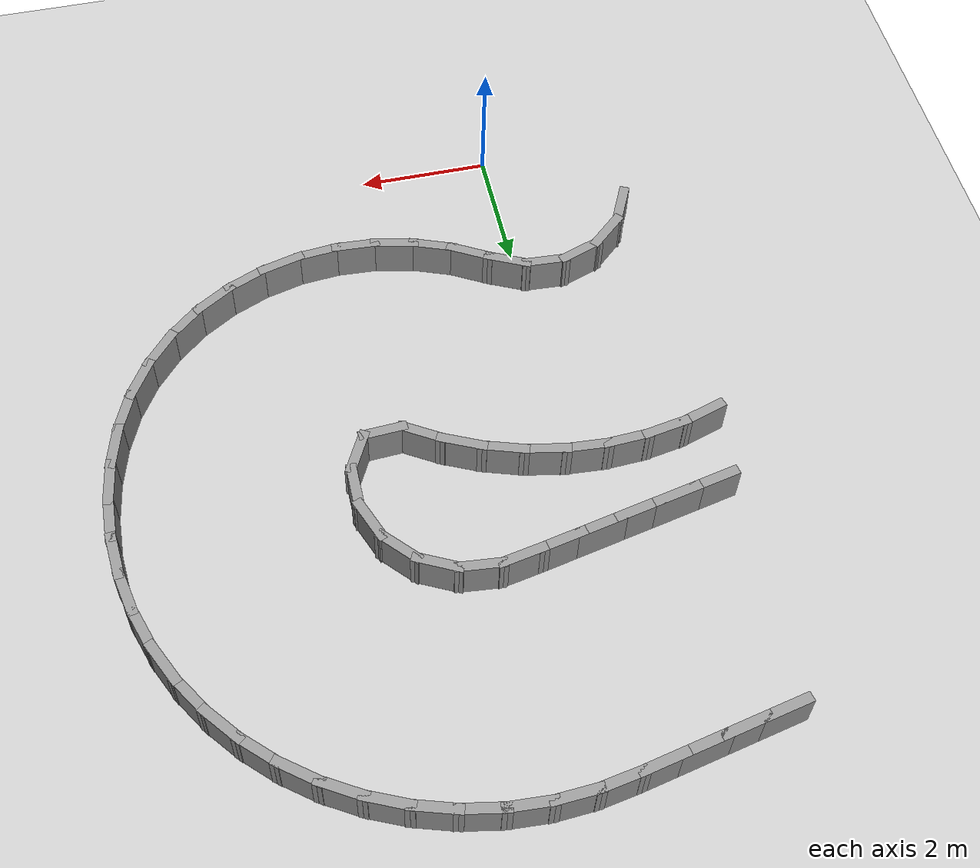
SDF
<sdf version="1.7">
 <world name="default">
  <model name="ground_plane">
   <static>1</static>
   <link name="link">
    <collision name="collision">
     <geometry><plane><normal>0 0 1</normal><size>100 100</size></plane></geometry>
     <surface><friction><ode><mu>100</mu><mu2>50</mu2></ode></friction></surface>
    </collision>
    <visual name="visual">
     <cast_shadows>0</cast_shadows>
     <geometry><plane><normal>0 0 1</normal><size>100 100</size></plane></geometry>
     <material>
      <script><uri>file://media/materials/scripts/gazebo.material</uri><name>Gazebo/Grey</name></script>
     </material>
    </visual>
   </link>
  </model>
  <model name="rand_turn_07">
   <link name="Wall_11">
    <collision name="Wall_11_Collision">
     <geometry><box><size>0.7496 0.1500 0.6000</size></box></geometry>
     <pose>0 0 0.3000 0 -0 0</pose>
    </collision>
    <visual name="Wall_11_Visual">
     <pose>0 0 0.3000 0 -0 0</pose>
     <geometry><box><size>0.7496 0.1500 0.6000</size></box></geometry>
     <material>
      <script><uri>file://media/materials/scripts/gazebo.material</uri><name>Gazebo/Grey</name></script>
      <ambient>1 1 1 1</ambient>
     </material>
    </visual>
    <pose>-1.9034 5.8433 0 0 -0 0.29802</pose>
   </link>
   <link name="Wall_12">
    <collision name="Wall_12_Collision">
     <geometry><box><size>0.7496 0.1500 0.6000</size></box></geometry>
     <pose>0 0 0.3000 0 -0 0</pose>
    </collision>
    <visual name="Wall_12_Visual">
     <pose>0 0 0.3000 0 -0 0</pose>
     <geometry><box><size>0.7496 0.1500 0.6000</size></box></geometry>
     <material>
      <script><uri>file://media/materials/scripts/gazebo.material</uri><name>Gazebo/Grey</name></script>
      <ambient>1 1 1 1</ambient>
     </material>
    </visual>
    <pose>-1.3217 5.9840 0 0 -0 0.17653</pose>
   </link>
   <link name="Wall_13">
    <collision name="Wall_13_Collision">
     <geometry><box><size>0.7496 0.1500 0.6000</size></box></geometry>
     <pose>0 0 0.3000 0 -0 0</pose>
    </collision>
    <visual name="Wall_13_Visual">
     <pose>0 0 0.3000 0 -0 0</pose>
     <geometry><box><size>0.7496 0.1500 0.6000</size></box></geometry>
     <material>
      <script><uri>file://media/materials/scripts/gazebo.material</uri><name>Gazebo/Grey</name></script>
      <ambient>1 1 1 1</ambient>
     </material>
    </visual>
    <pose>-0.7272 6.0531 0 0 -0 0.05503</pose>
   </link>
   <link name="Wall_14">
    <collision name="Wall_14_Collision">
     <geometry><box><size>0.7496 0.1500 0.6000</size></box></geometry>
     <pose>0 0 0.3000 0 -0 0</pose>
    </collision>
    <visual name="Wall_14_Visual">
     <pose>0 0 0.3000 0 -0 0</pose>
     <geometry><box><size>0.7496 0.1500 0.6000</size></box></geometry>
     <material>
      <script><uri>file://media/materials/scripts/gazebo.material</uri><name>Gazebo/Grey</name></script>
      <ambient>1 1 1 1</ambient>
     </material>
    </visual>
    <pose>-0.1287 6.0497 0 0 -0 -0.06646</pose>
   </link>
   <link name="Wall_15">
    <collision name="Wall_15_Collision">
     <geometry><box><size>0.7496 0.1500 0.6000</size></box></geometry>
     <pose>0 0 0.3000 0 -0 0</pose>
    </collision>
    <visual name="Wall_15_Visual">
     <pose>0 0 0.3000 0 -0 0</pose>
     <geometry><box><size>0.7496 0.1500 0.6000</size></box></geometry>
     <material>
      <script><uri>file://media/materials/scripts/gazebo.material</uri><name>Gazebo/Grey</name></script>
      <ambient>1 1 1 1</ambient>
     </material>
    </visual>
    <pose>0.4650 5.9738 0 0 -0 -0.18795</pose>
   </link>
   <link name="Wall_16">
    <collision name="Wall_16_Collision">
     <geometry><box><size>0.7496 0.1500 0.6000</size></box></geometry>
     <pose>0 0 0.3000 0 -0 0</pose>
    </collision>
    <visual name="Wall_16_Visual">
     <pose>0 0 0.3000 0 -0 0</pose>
     <geometry><box><size>0.7496 0.1500 0.6000</size></box></geometry>
     <material>
      <script><uri>file://media/materials/scripts/gazebo.material</uri><name>Gazebo/Grey</name></script>
      <ambient>1 1 1 1</ambient>
     </material>
    </visual>
    <pose>1.0451 5.8263 0 0 -0 -0.30997</pose>
   </link>
   <link name="Wall_17">
    <collision name="Wall_17_Collision">
     <geometry><box><size>0.7496 0.1500 0.6000</size></box></geometry>
     <pose>0 0 0.3000 0 -0 0</pose>
    </collision>
    <visual name="Wall_17_Visual">
     <pose>0 0 0.3000 0 -0 0</pose>
     <geometry><box><size>0.7496 0.1500 0.6000</size></box></geometry>
     <material>
      <script><uri>file://media/materials/scripts/gazebo.material</uri><name>Gazebo/Grey</name></script>
      <ambient>1 1 1 1</ambient>
     </material>
    </visual>
    <pose>1.6029 5.6095 0 0 -0 -0.43148</pose>
   </link>
   <link name="Wall_18">
    <collision name="Wall_18_Collision">
     <geometry><box><size>0.7497 0.1500 0.6000</size></box></geometry>
     <pose>0 0 0.3000 0 -0 0</pose>
    </collision>
    <visual name="Wall_18_Visual">
     <pose>0 0 0.3000 0 -0 0</pose>
     <geometry><box><size>0.7497 0.1500 0.6000</size></box></geometry>
     <material>
      <script><uri>file://media/materials/scripts/gazebo.material</uri><name>Gazebo/Grey</name></script>
      <ambient>1 1 1 1</ambient>
     </material>
    </visual>
    <pose>2.1314 5.3282 0 0 -0 -0.54661</pose>
   </link>
   <link name="Wall_19">
    <collision name="Wall_19_Collision">
     <geometry><box><size>0.7203 0.1500 0.6000</size></box></geometry>
     <pose>0 0 0.3000 0 -0 0</pose>
    </collision>
    <visual name="Wall_19_Visual">
     <pose>0 0 0.3000 0 -0 0</pose>
     <geometry><box><size>0.7203 0.1500 0.6000</size></box></geometry>
     <material>
      <script><uri>file://media/materials/scripts/gazebo.material</uri><name>Gazebo/Grey</name></script>
      <ambient>1 1 1 1</ambient>
     </material>
    </visual>
    <pose>2.6722 5.1901 0 0 -0 0.06224</pose>
   </link>
   <link name="Wall_20">
    <collision name="Wall_20_Collision">
     <geometry><box><size>0.7338 0.1500 0.6000</size></box></geometry>
     <pose>0 0 0.3000 0 -0 0</pose>
    </collision>
    <visual name="Wall_20_Visual">
     <pose>0 0 0.3000 0 -0 0</pose>
     <geometry><box><size>0.7338 0.1500 0.6000</size></box></geometry>
     <material>
      <script><uri>file://media/materials/scripts/gazebo.material</uri><name>Gazebo/Grey</name></script>
      <ambient>1 1 1 1</ambient>
     </material>
    </visual>
    <pose>3.0927 5.4662 0 0 -0 1.08660</pose>
   </link>
   <link name="Wall_21">
    <collision name="Wall_21_Collision">
     <geometry><box><size>0.7465 0.1500 0.6000</size></box></geometry>
     <pose>0 0 0.3000 0 -0 0</pose>
    </collision>
    <visual name="Wall_21_Visual">
     <pose>0 0 0.3000 0 -0 0</pose>
     <geometry><box><size>0.7465 0.1500 0.6000</size></box></geometry>
     <material>
      <script><uri>file://media/materials/scripts/gazebo.material</uri><name>Gazebo/Grey</name></script>
      <ambient>1 1 1 1</ambient>
     </material>
    </visual>
    <pose>3.2300 6.0228 0 0 -0 1.56584</pose>
   </link>
   <link name="Wall_22">
    <collision name="Wall_22_Collision">
     <geometry><box><size>0.7465 0.1500 0.6000</size></box></geometry>
     <pose>0 0 0.3000 0 -0 0</pose>
    </collision>
    <visual name="Wall_22_Visual">
     <pose>0 0 0.3000 0 -0 0</pose>
     <geometry><box><size>0.7465 0.1500 0.6000</size></box></geometry>
     <material>
      <script><uri>file://media/materials/scripts/gazebo.material</uri><name>Gazebo/Grey</name></script>
      <ambient>1 1 1 1</ambient>
     </material>
    </visual>
    <pose>3.1246 6.5995 0 0 -0 1.93747</pose>
   </link>
   <link name="Wall_23">
    <collision name="Wall_23_Collision">
     <geometry><box><size>0.7465 0.1500 0.6000</size></box></geometry>
     <pose>0 0 0.3000 0 -0 0</pose>
    </collision>
    <visual name="Wall_23_Visual">
     <pose>0 0 0.3000 0 -0 0</pose>
     <geometry><box><size>0.7465 0.1500 0.6000</size></box></geometry>
     <material>
      <script><uri>file://media/materials/scripts/gazebo.material</uri><name>Gazebo/Grey</name></script>
      <ambient>1 1 1 1</ambient>
     </material>
    </visual>
    <pose>2.8170 7.0987 0 0 -0 2.30850</pose>
   </link>
   <link name="Wall_24">
    <collision name="Wall_24_Collision">
     <geometry><box><size>0.7465 0.1500 0.6000</size></box></geometry>
     <pose>0 0 0.3000 0 -0 0</pose>
    </collision>
    <visual name="Wall_24_Visual">
     <pose>0 0 0.3000 0 -0 0</pose>
     <geometry><box><size>0.7465 0.1500 0.6000</size></box></geometry>
     <material>
      <script><uri>file://media/materials/scripts/gazebo.material</uri><name>Gazebo/Grey</name></script>
      <ambient>1 1 1 1</ambient>
     </material>
    </visual>
    <pose>2.3494 7.4523 0 0 -0 2.67965</pose>
   </link>
   <link name="Wall_25">
    <collision name="Wall_25_Collision">
     <geometry><box><size>0.7465 0.1500 0.6000</size></box></geometry>
     <pose>0 0 0.3000 0 -0 0</pose>
    </collision>
    <visual name="Wall_25_Visual">
     <pose>0 0 0.3000 0 -0 0</pose>
     <geometry><box><size>0.7465 0.1500 0.6000</size></box></geometry>
     <material>
      <script><uri>file://media/materials/scripts/gazebo.material</uri><name>Gazebo/Grey</name></script>
      <ambient>1 1 1 1</ambient>
     </material>
    </visual>
    <pose>1.7853 7.6121 0 0 -0 3.05135</pose>
   </link>
   <link name="Wall_26">
    <collision name="Wall_26_Collision">
     <geometry><box><size>0.7497 0.1500 0.6000</size></box></geometry>
     <pose>0 0 0.3000 0 -0 0</pose>
    </collision>
    <visual name="Wall_26_Visual">
     <pose>0 0 0.3000 0 -0 0</pose>
     <geometry><box><size>0.7497 0.1500 0.6000</size></box></geometry>
     <material>
      <script><uri>file://media/materials/scripts/gazebo.material</uri><name>Gazebo/Grey</name></script>
      <ambient>1 1 1 1</ambient>
     </material>
    </visual>
    <pose>1.1940 7.5816 0 0 -0 -2.94908</pose>
   </link>
   <link name="Wall_27">
    <collision name="Wall_27_Collision">
     <geometry><box><size>0.7500 0.1500 0.6000</size></box></geometry>
     <pose>0 0 0.3000 0 -0 0</pose>
    </collision>
    <visual name="Wall_27_Visual">
     <pose>0 0 0.3000 0 -0 0</pose>
     <geometry><box><size>0.7500 0.1500 0.6000</size></box></geometry>
     <material>
      <script><uri>file://media/materials/scripts/gazebo.material</uri><name>Gazebo/Grey</name></script>
      <ambient>1 1 1 1</ambient>
     </material>
    </visual>
    <pose>0.6063 7.4615 0 0 -0 -2.93095</pose>
   </link>
   <link name="Wall_28">
    <collision name="Wall_28_Collision">
     <geometry><box><size>0.7500 0.1500 0.6000</size></box></geometry>
     <pose>0 0 0.3000 0 -0 0</pose>
    </collision>
    <visual name="Wall_28_Visual">
     <pose>0 0 0.3000 0 -0 0</pose>
     <geometry><box><size>0.7500 0.1500 0.6000</size></box></geometry>
     <material>
      <script><uri>file://media/materials/scripts/gazebo.material</uri><name>Gazebo/Grey</name></script>
      <ambient>1 1 1 1</ambient>
     </material>
    </visual>
    <pose>0.0196 7.3361 0 0 -0 -2.93095</pose>
   </link>
   <link name="Wall_29">
    <collision name="Wall_29_Collision">
     <geometry><box><size>0.7500 0.1500 0.6000</size></box></geometry>
     <pose>0 0 0.3000 0 -0 0</pose>
    </collision>
    <visual name="Wall_29_Visual">
     <pose>0 0 0.3000 0 -0 0</pose>
     <geometry><box><size>0.7500 0.1500 0.6000</size></box></geometry>
     <material>
      <script><uri>file://media/materials/scripts/gazebo.material</uri><name>Gazebo/Grey</name></script>
      <ambient>1 1 1 1</ambient>
     </material>
    </visual>
    <pose>-0.5672 7.2106 0 0 -0 -2.93095</pose>
   </link>
   <link name="Wall_30">
    <collision name="Wall_30_Collision">
     <geometry><box><size>0.7500 0.1500 0.6000</size></box></geometry>
     <pose>0 0 0.3000 0 -0 0</pose>
    </collision>
    <visual name="Wall_30_Visual">
     <pose>0 0 0.3000 0 -0 0</pose>
     <geometry><box><size>0.7500 0.1500 0.6000</size></box></geometry>
     <material>
      <script><uri>file://media/materials/scripts/gazebo.material</uri><name>Gazebo/Grey</name></script>
      <ambient>1 1 1 1</ambient>
     </material>
    </visual>
    <pose>-1.1539 7.0852 0 0 -0 -2.93095</pose>
   </link>
   <link name="Wall_31">
    <collision name="Wall_31_Collision">
     <geometry><box><size>0.7500 0.1500 0.6000</size></box></geometry>
     <pose>0 0 0.3000 0 -0 0</pose>
    </collision>
    <visual name="Wall_31_Visual">
     <pose>0 0 0.3000 0 -0 0</pose>
     <geometry><box><size>0.7500 0.1500 0.6000</size></box></geometry>
     <material>
      <script><uri>file://media/materials/scripts/gazebo.material</uri><name>Gazebo/Grey</name></script>
      <ambient>1 1 1 1</ambient>
     </material>
    </visual>
    <pose>-1.7406 6.9597 0 0 -0 -2.93095</pose>
   </link>
   <link name="Wall_59">
    <collision name="Wall_59_Collision">
     <geometry><box><size>0.7462 0.1500 0.6000</size></box></geometry>
     <pose>0 0 0.3000 0 -0 0</pose>
    </collision>
    <visual name="Wall_59_Visual">
     <pose>0 0 0.3000 0 -0 0</pose>
     <geometry><box><size>0.7462 0.1500 0.6000</size></box></geometry>
     <material>
      <script><uri>file://media/materials/scripts/gazebo.material</uri><name>Gazebo/Grey</name></script>
      <ambient>1 1 1 1</ambient>
     </material>
    </visual>
    <pose>-1.8103 1.7835 0 0 -0 1.12285</pose>
   </link>
   <link name="Wall_60">
    <collision name="Wall_60_Collision">
     <geometry><box><size>0.7462 0.1500 0.6000</size></box></geometry>
     <pose>0 0 0.3000 0 -0 0</pose>
    </collision>
    <visual name="Wall_60_Visual">
     <pose>0 0 0.3000 0 -0 0</pose>
     <geometry><box><size>0.7462 0.1500 0.6000</size></box></geometry>
     <material>
      <script><uri>file://media/materials/scripts/gazebo.material</uri><name>Gazebo/Grey</name></script>
      <ambient>1 1 1 1</ambient>
     </material>
    </visual>
    <pose>-1.4592 2.2510 0 0 -0 0.73045</pose>
   </link>
   <link name="Wall_61">
    <collision name="Wall_61_Collision">
     <geometry><box><size>0.7461 0.1500 0.6000</size></box></geometry>
     <pose>0 0 0.3000 0 -0 0</pose>
    </collision>
    <visual name="Wall_61_Visual">
     <pose>0 0 0.3000 0 -0 0</pose>
     <geometry><box><size>0.7461 0.1500 0.6000</size></box></geometry>
     <material>
      <script><uri>file://media/materials/scripts/gazebo.material</uri><name>Gazebo/Grey</name></script>
      <ambient>1 1 1 1</ambient>
     </material>
    </visual>
    <pose>-0.9560 2.5490 0 0 -0 0.33879</pose>
   </link>
   <link name="Wall_62">
    <collision name="Wall_62_Collision">
     <geometry><box><size>0.7462 0.1500 0.6000</size></box></geometry>
     <pose>0 0 0.3000 0 -0 0</pose>
    </collision>
    <visual name="Wall_62_Visual">
     <pose>0 0 0.3000 0 -0 0</pose>
     <geometry><box><size>0.7462 0.1500 0.6000</size></box></geometry>
     <material>
      <script><uri>file://media/materials/scripts/gazebo.material</uri><name>Gazebo/Grey</name></script>
      <ambient>1 1 1 1</ambient>
     </material>
    </visual>
    <pose>-0.3773 2.6323 0 0 -0 -0.05288</pose>
   </link>
   <link name="Wall_63">
    <collision name="Wall_63_Collision">
     <geometry><box><size>0.7465 0.1500 0.6000</size></box></geometry>
     <pose>0 0 0.3000 0 -0 0</pose>
    </collision>
    <visual name="Wall_63_Visual">
     <pose>0 0 0.3000 0 -0 0</pose>
     <geometry><box><size>0.7465 0.1500 0.6000</size></box></geometry>
     <material>
      <script><uri>file://media/materials/scripts/gazebo.material</uri><name>Gazebo/Grey</name></script>
      <ambient>1 1 1 1</ambient>
     </material>
    </visual>
    <pose>0.1900 2.4889 0 0 -0 -0.44208</pose>
   </link>
   <link name="Wall_64">
    <collision name="Wall_64_Collision">
     <geometry><box><size>0.7494 0.1500 0.6000</size></box></geometry>
     <pose>0 0 0.3000 0 -0 0</pose>
    </collision>
    <visual name="Wall_64_Visual">
     <pose>0 0 0.3000 0 -0 0</pose>
     <geometry><box><size>0.7494 0.1500 0.6000</size></box></geometry>
     <material>
      <script><uri>file://media/materials/scripts/gazebo.material</uri><name>Gazebo/Grey</name></script>
      <ambient>1 1 1 1</ambient>
     </material>
    </visual>
    <pose>0.7211 2.2151 0 0 -0 -0.50970</pose>
   </link>
   <link name="Wall_65">
    <collision name="Wall_65_Collision">
     <geometry><box><size>0.7494 0.1500 0.6000</size></box></geometry>
     <pose>0 0 0.3000 0 -0 0</pose>
    </collision>
    <visual name="Wall_65_Visual">
     <pose>0 0 0.3000 0 -0 0</pose>
     <geometry><box><size>0.7494 0.1500 0.6000</size></box></geometry>
     <material>
      <script><uri>file://media/materials/scripts/gazebo.material</uri><name>Gazebo/Grey</name></script>
      <ambient>1 1 1 1</ambient>
     </material>
    </visual>
    <pose>1.2635 1.9642 0 0 -0 -0.35690</pose>
   </link>
   <link name="Wall_66">
    <collision name="Wall_66_Collision">
     <geometry><box><size>0.7494 0.1500 0.6000</size></box></geometry>
     <pose>0 0 0.3000 0 -0 0</pose>
    </collision>
    <visual name="Wall_66_Visual">
     <pose>0 0 0.3000 0 -0 0</pose>
     <geometry><box><size>0.7494 0.1500 0.6000</size></box></geometry>
     <material>
      <script><uri>file://media/materials/scripts/gazebo.material</uri><name>Gazebo/Grey</name></script>
      <ambient>1 1 1 1</ambient>
     </material>
    </visual>
    <pose>1.8376 1.7978 0 0 -0 -0.20735</pose>
   </link>
   <link name="Wall_67">
    <collision name="Wall_67_Collision">
     <geometry><box><size>0.7494 0.1500 0.6000</size></box></geometry>
     <pose>0 0 0.3000 0 -0 0</pose>
    </collision>
    <visual name="Wall_67_Visual">
     <pose>0 0 0.3000 0 -0 0</pose>
     <geometry><box><size>0.7494 0.1500 0.6000</size></box></geometry>
     <material>
      <script><uri>file://media/materials/scripts/gazebo.material</uri><name>Gazebo/Grey</name></script>
      <ambient>1 1 1 1</ambient>
     </material>
    </visual>
    <pose>2.4302 1.7203 0 0 -0 -0.05266</pose>
   </link>
   <link name="Wall_68">
    <collision name="Wall_68_Collision">
     <geometry><box><size>0.7494 0.1500 0.6000</size></box></geometry>
     <pose>0 0 0.3000 0 -0 0</pose>
    </collision>
    <visual name="Wall_68_Visual">
     <pose>0 0 0.3000 0 -0 0</pose>
     <geometry><box><size>0.7494 0.1500 0.6000</size></box></geometry>
     <material>
      <script><uri>file://media/materials/scripts/gazebo.material</uri><name>Gazebo/Grey</name></script>
      <ambient>1 1 1 1</ambient>
     </material>
    </visual>
    <pose>3.0277 1.7336 0 0 -0 0.09715</pose>
   </link>
   <link name="Wall_69">
    <collision name="Wall_69_Collision">
     <geometry><box><size>0.7494 0.1500 0.6000</size></box></geometry>
     <pose>0 0 0.3000 0 -0 0</pose>
    </collision>
    <visual name="Wall_69_Visual">
     <pose>0 0 0.3000 0 -0 0</pose>
     <geometry><box><size>0.7494 0.1500 0.6000</size></box></geometry>
     <material>
      <script><uri>file://media/materials/scripts/gazebo.material</uri><name>Gazebo/Grey</name></script>
      <ambient>1 1 1 1</ambient>
     </material>
    </visual>
    <pose>3.6164 1.8367 0 0 -0 0.24964</pose>
   </link>
   <link name="Wall_70">
    <collision name="Wall_70_Collision">
     <geometry><box><size>0.7494 0.1500 0.6000</size></box></geometry>
     <pose>0 0 0.3000 0 -0 0</pose>
    </collision>
    <visual name="Wall_70_Visual">
     <pose>0 0 0.3000 0 -0 0</pose>
     <geometry><box><size>0.7494 0.1500 0.6000</size></box></geometry>
     <material>
      <script><uri>file://media/materials/scripts/gazebo.material</uri><name>Gazebo/Grey</name></script>
      <ambient>1 1 1 1</ambient>
     </material>
    </visual>
    <pose>4.1826 2.0279 0 0 -0 0.40165</pose>
   </link>
   <link name="Wall_71">
    <collision name="Wall_71_Collision">
     <geometry><box><size>0.7494 0.1500 0.6000</size></box></geometry>
     <pose>0 0 0.3000 0 -0 0</pose>
    </collision>
    <visual name="Wall_71_Visual">
     <pose>0 0 0.3000 0 -0 0</pose>
     <geometry><box><size>0.7494 0.1500 0.6000</size></box></geometry>
     <material>
      <script><uri>file://media/materials/scripts/gazebo.material</uri><name>Gazebo/Grey</name></script>
      <ambient>1 1 1 1</ambient>
     </material>
    </visual>
    <pose>4.7136 2.3022 0 0 -0 0.55194</pose>
   </link>
   <link name="Wall_72">
    <collision name="Wall_72_Collision">
     <geometry><box><size>0.7494 0.1500 0.6000</size></box></geometry>
     <pose>0 0 0.3000 0 -0 0</pose>
    </collision>
    <visual name="Wall_72_Visual">
     <pose>0 0 0.3000 0 -0 0</pose>
     <geometry><box><size>0.7494 0.1500 0.6000</size></box></geometry>
     <material>
      <script><uri>file://media/materials/scripts/gazebo.material</uri><name>Gazebo/Grey</name></script>
      <ambient>1 1 1 1</ambient>
     </material>
    </visual>
    <pose>5.1968 2.6538 0 0 -0 0.70615</pose>
   </link>
   <link name="Wall_73">
    <collision name="Wall_73_Collision">
     <geometry><box><size>0.7494 0.1500 0.6000</size></box></geometry>
     <pose>0 0 0.3000 0 -0 0</pose>
    </collision>
    <visual name="Wall_73_Visual">
     <pose>0 0 0.3000 0 -0 0</pose>
     <geometry><box><size>0.7494 0.1500 0.6000</size></box></geometry>
     <material>
      <script><uri>file://media/materials/scripts/gazebo.material</uri><name>Gazebo/Grey</name></script>
      <ambient>1 1 1 1</ambient>
     </material>
    </visual>
    <pose>5.6214 3.0746 0 0 -0 0.85570</pose>
   </link>
   <link name="Wall_74">
    <collision name="Wall_74_Collision">
     <geometry><box><size>0.7494 0.1500 0.6000</size></box></geometry>
     <pose>0 0 0.3000 0 -0 0</pose>
    </collision>
    <visual name="Wall_74_Visual">
     <pose>0 0 0.3000 0 -0 0</pose>
     <geometry><box><size>0.7494 0.1500 0.6000</size></box></geometry>
     <material>
      <script><uri>file://media/materials/scripts/gazebo.material</uri><name>Gazebo/Grey</name></script>
      <ambient>1 1 1 1</ambient>
     </material>
    </visual>
    <pose>5.9775 3.5545 0 0 -0 1.00918</pose>
   </link>
   <link name="Wall_75">
    <collision name="Wall_75_Collision">
     <geometry><box><size>0.7494 0.1500 0.6000</size></box></geometry>
     <pose>0 0 0.3000 0 -0 0</pose>
    </collision>
    <visual name="Wall_75_Visual">
     <pose>0 0 0.3000 0 -0 0</pose>
     <geometry><box><size>0.7494 0.1500 0.6000</size></box></geometry>
     <material>
      <script><uri>file://media/materials/scripts/gazebo.material</uri><name>Gazebo/Grey</name></script>
      <ambient>1 1 1 1</ambient>
     </material>
    </visual>
    <pose>6.2570 4.0828 0 0 -0 1.15919</pose>
   </link>
   <link name="Wall_76">
    <collision name="Wall_76_Collision">
     <geometry><box><size>0.7496 0.1500 0.6000</size></box></geometry>
     <pose>0 0 0.3000 0 -0 0</pose>
    </collision>
    <visual name="Wall_76_Visual">
     <pose>0 0 0.3000 0 -0 0</pose>
     <geometry><box><size>0.7496 0.1500 0.6000</size></box></geometry>
     <material>
      <script><uri>file://media/materials/scripts/gazebo.material</uri><name>Gazebo/Grey</name></script>
      <ambient>1 1 1 1</ambient>
     </material>
    </visual>
    <pose>6.4597 4.6456 0 0 -0 1.29094</pose>
   </link>
   <link name="Wall_77">
    <collision name="Wall_77_Collision">
     <geometry><box><size>0.7496 0.1500 0.6000</size></box></geometry>
     <pose>0 0 0.3000 0 -0 0</pose>
    </collision>
    <visual name="Wall_77_Visual">
     <pose>0 0 0.3000 0 -0 0</pose>
     <geometry><box><size>0.7496 0.1500 0.6000</size></box></geometry>
     <material>
      <script><uri>file://media/materials/scripts/gazebo.material</uri><name>Gazebo/Grey</name></script>
      <ambient>1 1 1 1</ambient>
     </material>
    </visual>
    <pose>6.5904 5.2297 0 0 -0 1.41045</pose>
   </link>
   <link name="Wall_78">
    <collision name="Wall_78_Collision">
     <geometry><box><size>0.7496 0.1500 0.6000</size></box></geometry>
     <pose>0 0 0.3000 0 -0 0</pose>
    </collision>
    <visual name="Wall_78_Visual">
     <pose>0 0 0.3000 0 -0 0</pose>
     <geometry><box><size>0.7496 0.1500 0.6000</size></box></geometry>
     <material>
      <script><uri>file://media/materials/scripts/gazebo.material</uri><name>Gazebo/Grey</name></script>
      <ambient>1 1 1 1</ambient>
     </material>
    </visual>
    <pose>6.6505 5.8252 0 0 -0 1.52991</pose>
   </link>
   <link name="Wall_79">
    <collision name="Wall_79_Collision">
     <geometry><box><size>0.7496 0.1500 0.6000</size></box></geometry>
     <pose>0 0 0.3000 0 -0 0</pose>
    </collision>
    <visual name="Wall_79_Visual">
     <pose>0 0 0.3000 0 -0 0</pose>
     <geometry><box><size>0.7496 0.1500 0.6000</size></box></geometry>
     <material>
      <script><uri>file://media/materials/scripts/gazebo.material</uri><name>Gazebo/Grey</name></script>
      <ambient>1 1 1 1</ambient>
     </material>
    </visual>
    <pose>6.6392 6.4237 0 0 -0 1.64937</pose>
   </link>
   <link name="Wall_80">
    <collision name="Wall_80_Collision">
     <geometry><box><size>0.7496 0.1500 0.6000</size></box></geometry>
     <pose>0 0 0.3000 0 -0 0</pose>
    </collision>
    <visual name="Wall_80_Visual">
     <pose>0 0 0.3000 0 -0 0</pose>
     <geometry><box><size>0.7496 0.1500 0.6000</size></box></geometry>
     <material>
      <script><uri>file://media/materials/scripts/gazebo.material</uri><name>Gazebo/Grey</name></script>
      <ambient>1 1 1 1</ambient>
     </material>
    </visual>
    <pose>6.5567 7.0165 0 0 -0 1.76884</pose>
   </link>
   <link name="Wall_81">
    <collision name="Wall_81_Collision">
     <geometry><box><size>0.7496 0.1500 0.6000</size></box></geometry>
     <pose>0 0 0.3000 0 -0 0</pose>
    </collision>
    <visual name="Wall_81_Visual">
     <pose>0 0 0.3000 0 -0 0</pose>
     <geometry><box><size>0.7496 0.1500 0.6000</size></box></geometry>
     <material>
      <script><uri>file://media/materials/scripts/gazebo.material</uri><name>Gazebo/Grey</name></script>
      <ambient>1 1 1 1</ambient>
     </material>
    </visual>
    <pose>6.4041 7.5953 0 0 -0 1.88830</pose>
   </link>
   <link name="Wall_82">
    <collision name="Wall_82_Collision">
     <geometry><box><size>0.7496 0.1500 0.6000</size></box></geometry>
     <pose>0 0 0.3000 0 -0 0</pose>
    </collision>
    <visual name="Wall_82_Visual">
     <pose>0 0 0.3000 0 -0 0</pose>
     <geometry><box><size>0.7496 0.1500 0.6000</size></box></geometry>
     <material>
      <script><uri>file://media/materials/scripts/gazebo.material</uri><name>Gazebo/Grey</name></script>
      <ambient>1 1 1 1</ambient>
     </material>
    </visual>
    <pose>6.1836 8.1517 0 0 -0 2.00776</pose>
   </link>
   <link name="Wall_83">
    <collision name="Wall_83_Collision">
     <geometry><box><size>0.7496 0.1500 0.6000</size></box></geometry>
     <pose>0 0 0.3000 0 -0 0</pose>
    </collision>
    <visual name="Wall_83_Visual">
     <pose>0 0 0.3000 0 -0 0</pose>
     <geometry><box><size>0.7496 0.1500 0.6000</size></box></geometry>
     <material>
      <script><uri>file://media/materials/scripts/gazebo.material</uri><name>Gazebo/Grey</name></script>
      <ambient>1 1 1 1</ambient>
     </material>
    </visual>
    <pose>5.8984 8.6779 0 0 -0 2.12722</pose>
   </link>
   <link name="Wall_84">
    <collision name="Wall_84_Collision">
     <geometry><box><size>0.7496 0.1500 0.6000</size></box></geometry>
     <pose>0 0 0.3000 0 -0 0</pose>
    </collision>
    <visual name="Wall_84_Visual">
     <pose>0 0 0.3000 0 -0 0</pose>
     <geometry><box><size>0.7496 0.1500 0.6000</size></box></geometry>
     <material>
      <script><uri>file://media/materials/scripts/gazebo.material</uri><name>Gazebo/Grey</name></script>
      <ambient>1 1 1 1</ambient>
     </material>
    </visual>
    <pose>5.5525 9.1664 0 0 -0 2.24669</pose>
   </link>
   <link name="Wall_85">
    <collision name="Wall_85_Collision">
     <geometry><box><size>0.7496 0.1500 0.6000</size></box></geometry>
     <pose>0 0 0.3000 0 -0 0</pose>
    </collision>
    <visual name="Wall_85_Visual">
     <pose>0 0 0.3000 0 -0 0</pose>
     <geometry><box><size>0.7496 0.1500 0.6000</size></box></geometry>
     <material>
      <script><uri>file://media/materials/scripts/gazebo.material</uri><name>Gazebo/Grey</name></script>
      <ambient>1 1 1 1</ambient>
     </material>
    </visual>
    <pose>5.1509 9.6101 0 0 -0 2.36615</pose>
   </link>
   <link name="Wall_86">
    <collision name="Wall_86_Collision">
     <geometry><box><size>0.7496 0.1500 0.6000</size></box></geometry>
     <pose>0 0 0.3000 0 -0 0</pose>
    </collision>
    <visual name="Wall_86_Visual">
     <pose>0 0 0.3000 0 -0 0</pose>
     <geometry><box><size>0.7496 0.1500 0.6000</size></box></geometry>
     <material>
      <script><uri>file://media/materials/scripts/gazebo.material</uri><name>Gazebo/Grey</name></script>
      <ambient>1 1 1 1</ambient>
     </material>
    </visual>
    <pose>4.6992 10.0029 0 0 -0 2.48561</pose>
   </link>
   <link name="Wall_87">
    <collision name="Wall_87_Collision">
     <geometry><box><size>0.7496 0.1500 0.6000</size></box></geometry>
     <pose>0 0 0.3000 0 -0 0</pose>
    </collision>
    <visual name="Wall_87_Visual">
     <pose>0 0 0.3000 0 -0 0</pose>
     <geometry><box><size>0.7496 0.1500 0.6000</size></box></geometry>
     <material>
      <script><uri>file://media/materials/scripts/gazebo.material</uri><name>Gazebo/Grey</name></script>
      <ambient>1 1 1 1</ambient>
     </material>
    </visual>
    <pose>4.2040 10.3389 0 0 -0 2.60508</pose>
   </link>
   <link name="Wall_88">
    <collision name="Wall_88_Collision">
     <geometry><box><size>0.7496 0.1500 0.6000</size></box></geometry>
     <pose>0 0 0.3000 0 -0 0</pose>
    </collision>
    <visual name="Wall_88_Visual">
     <pose>0 0 0.3000 0 -0 0</pose>
     <geometry><box><size>0.7496 0.1500 0.6000</size></box></geometry>
     <material>
      <script><uri>file://media/materials/scripts/gazebo.material</uri><name>Gazebo/Grey</name></script>
      <ambient>1 1 1 1</ambient>
     </material>
    </visual>
    <pose>3.6722 10.6136 0 0 -0 2.72454</pose>
   </link>
   <link name="Wall_89">
    <collision name="Wall_89_Collision">
     <geometry><box><size>0.7496 0.1500 0.6000</size></box></geometry>
     <pose>0 0 0.3000 0 -0 0</pose>
    </collision>
    <visual name="Wall_89_Visual">
     <pose>0 0 0.3000 0 -0 0</pose>
     <geometry><box><size>0.7496 0.1500 0.6000</size></box></geometry>
     <material>
      <script><uri>file://media/materials/scripts/gazebo.material</uri><name>Gazebo/Grey</name></script>
      <ambient>1 1 1 1</ambient>
     </material>
    </visual>
    <pose>3.1115 10.8230 0 0 -0 2.84400</pose>
   </link>
   <link name="Wall_90">
    <collision name="Wall_90_Collision">
     <geometry><box><size>0.7496 0.1500 0.6000</size></box></geometry>
     <pose>0 0 0.3000 0 -0 0</pose>
    </collision>
    <visual name="Wall_90_Visual">
     <pose>0 0 0.3000 0 -0 0</pose>
     <geometry><box><size>0.7496 0.1500 0.6000</size></box></geometry>
     <material>
      <script><uri>file://media/materials/scripts/gazebo.material</uri><name>Gazebo/Grey</name></script>
      <ambient>1 1 1 1</ambient>
     </material>
    </visual>
    <pose>2.5298 10.9640 0 0 -0 2.96347</pose>
   </link>
   <link name="Wall_91">
    <collision name="Wall_91_Collision">
     <geometry><box><size>0.7496 0.1500 0.6000</size></box></geometry>
     <pose>0 0 0.3000 0 -0 0</pose>
    </collision>
    <visual name="Wall_91_Visual">
     <pose>0 0 0.3000 0 -0 0</pose>
     <geometry><box><size>0.7496 0.1500 0.6000</size></box></geometry>
     <material>
      <script><uri>file://media/materials/scripts/gazebo.material</uri><name>Gazebo/Grey</name></script>
      <ambient>1 1 1 1</ambient>
     </material>
    </visual>
    <pose>1.9354 11.0347 0 0 -0 3.08293</pose>
   </link>
   <link name="Wall_92">
    <collision name="Wall_92_Collision">
     <geometry><box><size>0.7496 0.1500 0.6000</size></box></geometry>
     <pose>0 0 0.3000 0 -0 0</pose>
    </collision>
    <visual name="Wall_92_Visual">
     <pose>0 0 0.3000 0 -0 0</pose>
     <geometry><box><size>0.7496 0.1500 0.6000</size></box></geometry>
     <material>
      <script><uri>file://media/materials/scripts/gazebo.material</uri><name>Gazebo/Grey</name></script>
      <ambient>1 1 1 1</ambient>
     </material>
    </visual>
    <pose>1.3369 11.0341 0 0 -0 -3.08079</pose>
   </link>
   <link name="Wall_93">
    <collision name="Wall_93_Collision">
     <geometry><box><size>0.7497 0.1500 0.6000</size></box></geometry>
     <pose>0 0 0.3000 0 -0 0</pose>
    </collision>
    <visual name="Wall_93_Visual">
     <pose>0 0 0.3000 0 -0 0</pose>
     <geometry><box><size>0.7497 0.1500 0.6000</size></box></geometry>
     <material>
      <script><uri>file://media/materials/scripts/gazebo.material</uri><name>Gazebo/Grey</name></script>
      <ambient>1 1 1 1</ambient>
     </material>
    </visual>
    <pose>0.7424 10.9633 0 0 -0 -2.96541</pose>
   </link>
   <link name="Wall_94">
    <collision name="Wall_94_Collision">
     <geometry><box><size>0.7500 0.1500 0.6000</size></box></geometry>
     <pose>0 0 0.3000 0 -0 0</pose>
    </collision>
    <visual name="Wall_94_Visual">
     <pose>0 0 0.3000 0 -0 0</pose>
     <geometry><box><size>0.7500 0.1500 0.6000</size></box></geometry>
     <material>
      <script><uri>file://media/materials/scripts/gazebo.material</uri><name>Gazebo/Grey</name></script>
      <ambient>1 1 1 1</ambient>
     </material>
    </visual>
    <pose>0.1538 10.8480 0 0 -0 -2.93095</pose>
   </link>
   <link name="Wall_95">
    <collision name="Wall_95_Collision">
     <geometry><box><size>0.7500 0.1500 0.6000</size></box></geometry>
     <pose>0 0 0.3000 0 -0 0</pose>
    </collision>
    <visual name="Wall_95_Visual">
     <pose>0 0 0.3000 0 -0 0</pose>
     <geometry><box><size>0.7500 0.1500 0.6000</size></box></geometry>
     <material>
      <script><uri>file://media/materials/scripts/gazebo.material</uri><name>Gazebo/Grey</name></script>
      <ambient>1 1 1 1</ambient>
     </material>
    </visual>
    <pose>-0.4329 10.7226 0 0 -0 -2.93095</pose>
   </link>
   <link name="Wall_96">
    <collision name="Wall_96_Collision">
     <geometry><box><size>0.7500 0.1500 0.6000</size></box></geometry>
     <pose>0 0 0.3000 0 -0 0</pose>
    </collision>
    <visual name="Wall_96_Visual">
     <pose>0 0 0.3000 0 -0 0</pose>
     <geometry><box><size>0.7500 0.1500 0.6000</size></box></geometry>
     <material>
      <script><uri>file://media/materials/scripts/gazebo.material</uri><name>Gazebo/Grey</name></script>
      <ambient>1 1 1 1</ambient>
     </material>
    </visual>
    <pose>-1.0197 10.5971 0 0 -0 -2.93095</pose>
   </link>
   <link name="Wall_97">
    <collision name="Wall_97_Collision">
     <geometry><box><size>0.7500 0.1500 0.6000</size></box></geometry>
     <pose>0 0 0.3000 0 -0 0</pose>
    </collision>
    <visual name="Wall_97_Visual">
     <pose>0 0 0.3000 0 -0 0</pose>
     <geometry><box><size>0.7500 0.1500 0.6000</size></box></geometry>
     <material>
      <script><uri>file://media/materials/scripts/gazebo.material</uri><name>Gazebo/Grey</name></script>
      <ambient>1 1 1 1</ambient>
     </material>
    </visual>
    <pose>-1.6064 10.4717 0 0 -0 -2.93095</pose>
   </link>
   <static>1</static>
  </model>
 </world>
</sdf>
